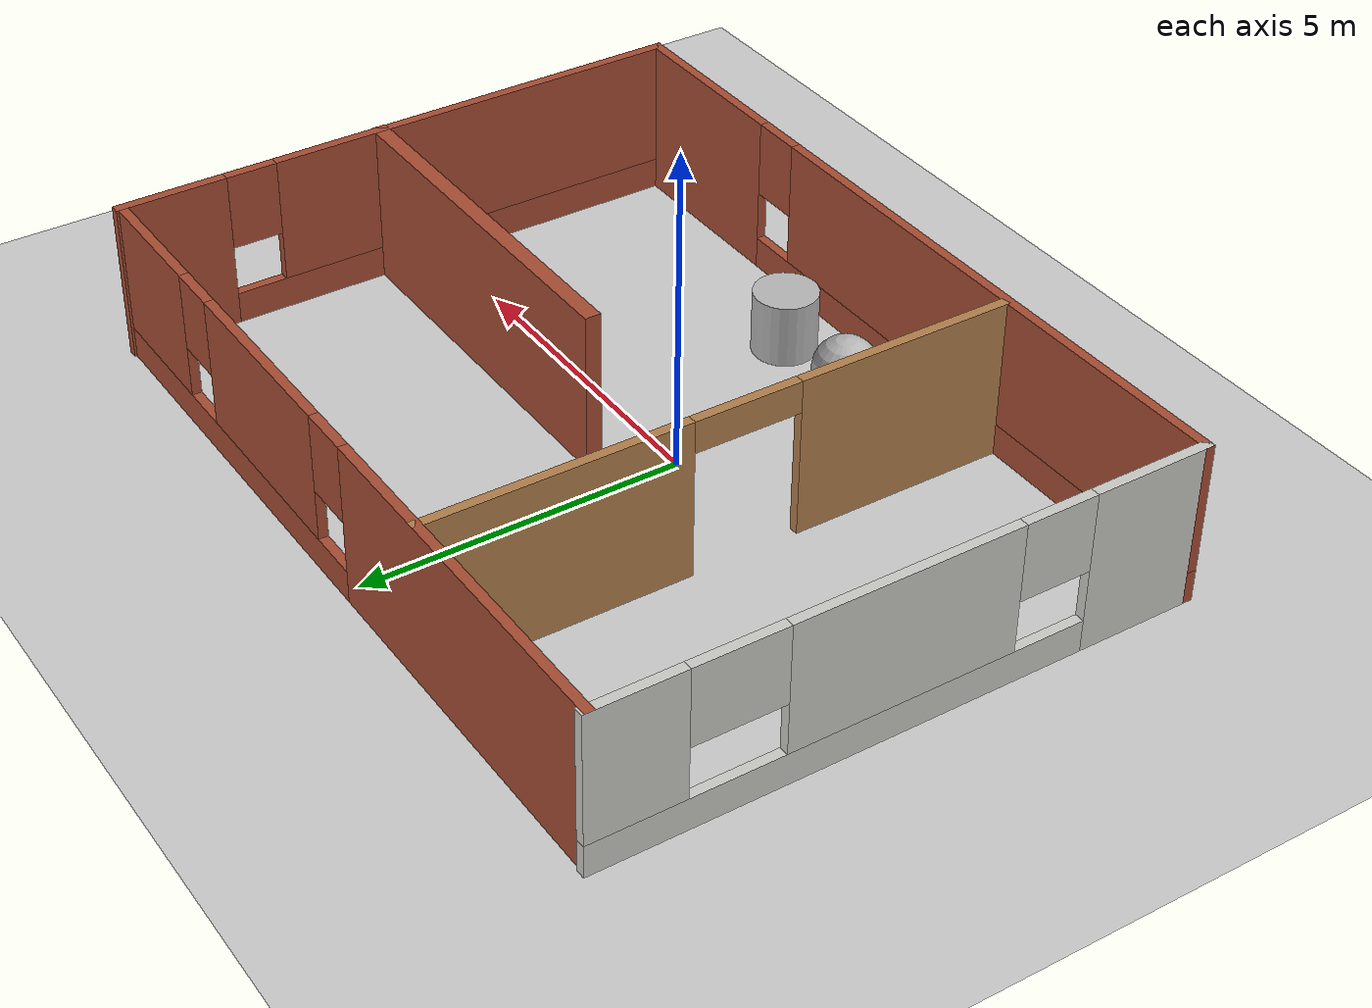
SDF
<sdf version="1.6">
 <world name="default">
  <light name="sun" type="directional">
   <pose>0 0 10 0 -0 0</pose>
   <diffuse>0.8 0.8 0.8 1</diffuse>
   <specular>0.1 0.1 0.1 1</specular>
   <attenuation>
    <range>1000</range>
    <constant>0.9</constant>
    <linear>0.01</linear>
    <quadratic>0.001</quadratic>
   </attenuation>
   <direction>-0.5 0.5 -1</direction>
  </light>
  <model name="ground_plane">
   <static>1</static>
   <link name="link">
    <collision name="collision">
     <geometry><plane><normal>0 0 1</normal><size>100 100</size></plane></geometry>
     <surface><friction><ode><mu>100</mu><mu2>50</mu2></ode></friction></surface>
    </collision>
    <visual name="visual">
     <cast_shadows>0</cast_shadows>
     <geometry><plane><normal>0 0 1</normal><size>100 100</size></plane></geometry>
     <material>
      <script><uri>file://media/materials/scripts/gazebo.material</uri><name>Gazebo/Grey</name></script>
     </material>
    </visual>
   </link>
  </model>
  <gravity>0 0 -9.8</gravity>
  <magnetic_field>6e-06 2.3e-05 -4.2e-05</magnetic_field>
  <atmosphere type="adiabatic"/>
  <physics name="default_physics" default="0" type="ode">
   <max_step_size>0.001</max_step_size>
   <real_time_factor>1</real_time_factor>
   <real_time_update_rate>1000</real_time_update_rate>
  </physics>
  <scene><ambient>0.4 0.4 0.4 1</ambient><background>0.7 0.7 0.7 1</background><shadows>1</shadows></scene>
  <spherical_coordinates>
   <surface_model>EARTH_WGS84</surface_model>
   <latitude_deg>0</latitude_deg>
   <longitude_deg>0</longitude_deg>
   <elevation>0</elevation>
   <heading_deg>0</heading_deg>
  </spherical_coordinates>
  <model name="small_test_building">
   <pose>0.317568 0.621309 0 0 -0 0</pose>
   <link name="Wall_1">
    <pose>-0.004477 4.55 0 0 -0 0</pose>
    <visual name="Wall_1_Visual_0">
     <pose>-3.44177 0 1.25 0 -0 0</pose>
     <geometry><box><size>5.86646 0.15 2.5</size></box></geometry>
     <material>
      <script><uri>file://media/materials/scripts/gazebo.material</uri><name>Gazebo/Bricks</name></script>
      <ambient>0.435294 0.796078 0.67451 1</ambient>
     </material>
    </visual>
    <collision name="Wall_1_Collision_0">
     <geometry><box><size>5.86646 0.15 2.5</size></box></geometry>
     <pose>-3.44177 0 1.25 0 -0 0</pose>
    </collision>
    <visual name="Wall_1_Visual_1">
     <pose>2.93323 0 0.25 0 -0 0</pose>
     <geometry><box><size>6.88354 0.15 0.5</size></box></geometry>
     <material>
      <script><uri>file://media/materials/scripts/gazebo.material</uri><name>Gazebo/Bricks</name></script>
      <ambient>0.435294 0.796078 0.67451 1</ambient>
     </material>
    </visual>
    <collision name="Wall_1_Collision_1">
     <geometry><box><size>6.88354 0.15 0.5</size></box></geometry>
     <pose>2.93323 0 0.25 0 -0 0</pose>
    </collision>
    <visual name="Wall_1_Visual_2">
     <pose>1.84388 0 1.5 0 -0 0</pose>
     <geometry><box><size>3.10484 0.15 2</size></box></geometry>
     <material>
      <script><uri>file://media/materials/scripts/gazebo.material</uri><name>Gazebo/Bricks</name></script>
      <ambient>0.435294 0.796078 0.67451 1</ambient>
     </material>
    </visual>
    <collision name="Wall_1_Collision_2">
     <geometry><box><size>3.10484 0.15 2</size></box></geometry>
     <pose>1.84388 0 1.5 0 -0 0</pose>
    </collision>
    <visual name="Wall_1_Visual_3">
     <pose>5.28565 0 1.5 0 -0 0</pose>
     <geometry><box><size>2.17869 0.15 2</size></box></geometry>
     <material>
      <script><uri>file://media/materials/scripts/gazebo.material</uri><name>Gazebo/Bricks</name></script>
      <ambient>0.435294 0.796078 0.67451 1</ambient>
     </material>
    </visual>
    <collision name="Wall_1_Collision_3">
     <geometry><box><size>2.17869 0.15 2</size></box></geometry>
     <pose>5.28565 0 1.5 0 -0 0</pose>
    </collision>
    <visual name="Wall_1_Visual_4">
     <pose>-0.108538 0 1.9 0 -0 0</pose>
     <geometry><box><size>0.8 0.15 1.2</size></box></geometry>
     <material>
      <script><uri>file://media/materials/scripts/gazebo.material</uri><name>Gazebo/Bricks</name></script>
      <ambient>0.435294 0.796078 0.67451 1</ambient>
     </material>
    </visual>
    <collision name="Wall_1_Collision_4">
     <geometry><box><size>0.8 0.15 1.2</size></box></geometry>
     <pose>-0.108538 0 1.9 0 -0 0</pose>
    </collision>
    <visual name="Wall_1_Visual_5">
     <pose>3.7963 0 1.9 0 -0 0</pose>
     <geometry><box><size>0.8 0.15 1.2</size></box></geometry>
     <material>
      <script><uri>file://media/materials/scripts/gazebo.material</uri><name>Gazebo/Bricks</name></script>
      <ambient>0.435294 0.796078 0.67451 1</ambient>
     </material>
    </visual>
    <collision name="Wall_1_Collision_5">
     <geometry><box><size>0.8 0.15 1.2</size></box></geometry>
     <pose>3.7963 0 1.9 0 -0 0</pose>
    </collision>
   </link>
   <link name="Wall_2">
    <pose>6.29552 0 0 0 0 -1.5708</pose>
    <visual name="Wall_2_Visual_0">
     <pose>-3.79461 0 1.25 0 -0 0</pose>
     <geometry><box><size>1.73114 0.15 2.5</size></box></geometry>
     <material>
      <script><uri>file://media/materials/scripts/gazebo.material</uri><name>Gazebo/Bricks</name></script>
      <ambient>1 1 1 1</ambient>
     </material>
    </visual>
    <collision name="Wall_2_Collision_0">
     <geometry><box><size>1.73114 0.15 2.5</size></box></geometry>
     <pose>-3.79461 0 1.25 0 -0 0</pose>
    </collision>
    <visual name="Wall_2_Visual_1">
     <pose>0.865572 0 0.25 0 -0 0</pose>
     <geometry><box><size>7.58921 0.15 0.5</size></box></geometry>
     <material>
      <script><uri>file://media/materials/scripts/gazebo.material</uri><name>Gazebo/Bricks</name></script>
      <ambient>1 1 1 1</ambient>
     </material>
    </visual>
    <collision name="Wall_2_Collision_1">
     <geometry><box><size>7.58921 0.15 0.5</size></box></geometry>
     <pose>0.865572 0 0.25 0 -0 0</pose>
    </collision>
    <visual name="Wall_2_Visual_2">
     <pose>1.26557 0 1.5 0 -0 0</pose>
     <geometry><box><size>6.78921 0.15 2</size></box></geometry>
     <material>
      <script><uri>file://media/materials/scripts/gazebo.material</uri><name>Gazebo/Bricks</name></script>
      <ambient>1 1 1 1</ambient>
     </material>
    </visual>
    <collision name="Wall_2_Collision_2">
     <geometry><box><size>6.78921 0.15 2</size></box></geometry>
     <pose>1.26557 0 1.5 0 -0 0</pose>
    </collision>
    <visual name="Wall_2_Visual_3">
     <pose>-2.52903 0 1.9 0 -0 0</pose>
     <geometry><box><size>0.8 0.15 1.2</size></box></geometry>
     <material>
      <script><uri>file://media/materials/scripts/gazebo.material</uri><name>Gazebo/Bricks</name></script>
      <ambient>1 1 1 1</ambient>
     </material>
    </visual>
    <collision name="Wall_2_Collision_3">
     <geometry><box><size>0.8 0.15 1.2</size></box></geometry>
     <pose>-2.52903 0 1.9 0 -0 0</pose>
    </collision>
   </link>
   <link name="Wall_3">
    <pose>-0.004477 -4.58518 0 0 -0 3.14159</pose>
    <visual name="Wall_3_Visual_0">
     <pose>-4.86351 0 1.25 0 -0 0</pose>
     <geometry><box><size>3.02298 0.15 2.5</size></box></geometry>
     <material>
      <script><uri>file://media/materials/scripts/gazebo.material</uri><name>Gazebo/Bricks</name></script>
      <ambient>0.760784 0.662745 0.627451 1</ambient>
     </material>
    </visual>
    <collision name="Wall_3_Collision_0">
     <geometry><box><size>3.02298 0.15 2.5</size></box></geometry>
     <pose>-4.86351 0 1.25 0 -0 0</pose>
    </collision>
    <visual name="Wall_3_Visual_1">
     <pose>1.51149 0 0.25 0 -0 0</pose>
     <geometry><box><size>9.72701 0.15 0.5</size></box></geometry>
     <material>
      <script><uri>file://media/materials/scripts/gazebo.material</uri><name>Gazebo/Bricks</name></script>
      <ambient>0.760784 0.662745 0.627451 1</ambient>
     </material>
    </visual>
    <collision name="Wall_3_Collision_1">
     <geometry><box><size>9.72701 0.15 0.5</size></box></geometry>
     <pose>1.51149 0 0.25 0 -0 0</pose>
    </collision>
    <visual name="Wall_3_Visual_2">
     <pose>1.91149 0 1.5 0 -0 0</pose>
     <geometry><box><size>8.92702 0.15 2</size></box></geometry>
     <material>
      <script><uri>file://media/materials/scripts/gazebo.material</uri><name>Gazebo/Bricks</name></script>
      <ambient>0.760784 0.662745 0.627451 1</ambient>
     </material>
    </visual>
    <collision name="Wall_3_Collision_2">
     <geometry><box><size>8.92702 0.15 2</size></box></geometry>
     <pose>1.91149 0 1.5 0 -0 0</pose>
    </collision>
    <visual name="Wall_3_Visual_3">
     <pose>-2.95201 0 1.9 0 -0 0</pose>
     <geometry><box><size>0.8 0.15 1.2</size></box></geometry>
     <material>
      <script><uri>file://media/materials/scripts/gazebo.material</uri><name>Gazebo/Bricks</name></script>
      <ambient>0.760784 0.662745 0.627451 1</ambient>
     </material>
    </visual>
    <collision name="Wall_3_Collision_3">
     <geometry><box><size>0.8 0.15 1.2</size></box></geometry>
     <pose>-2.95201 0 1.9 0 -0 0</pose>
    </collision>
   </link>
   <link name="Wall_4">
    <pose>-6.30448 0 0 0 -0 1.5708</pose>
    <visual name="Wall_4_Visual_0">
     <pose>-3.71106 0 1.25 0 -0 0</pose>
     <geometry><box><size>1.89823 0.15 2.5</size></box></geometry>
     <material>
      <script><uri>file://media/materials/scripts/gazebo.material</uri><name>Gazebo/CeilingTiled</name></script>
      <ambient>1 1 1 1</ambient>
     </material>
    </visual>
    <collision name="Wall_4_Collision_0">
     <geometry><box><size>1.89823 0.15 2.5</size></box></geometry>
     <pose>-3.71106 0 1.25 0 -0 0</pose>
    </collision>
    <visual name="Wall_4_Visual_1">
     <pose>0.949117 0 0.25 0 -0 0</pose>
     <geometry><box><size>7.42212 0.15 0.5</size></box></geometry>
     <material>
      <script><uri>file://media/materials/scripts/gazebo.material</uri><name>Gazebo/CeilingTiled</name></script>
      <ambient>1 1 1 1</ambient>
     </material>
    </visual>
    <collision name="Wall_4_Collision_1">
     <geometry><box><size>7.42212 0.15 0.5</size></box></geometry>
     <pose>0.949117 0 0.25 0 -0 0</pose>
    </collision>
    <visual name="Wall_4_Visual_2">
     <pose>0.083477 0 1.5 0 -0 0</pose>
     <geometry><box><size>3.45763 0.15 2</size></box></geometry>
     <material>
      <script><uri>file://media/materials/scripts/gazebo.material</uri><name>Gazebo/CeilingTiled</name></script>
      <ambient>1 1 1 1</ambient>
     </material>
    </visual>
    <collision name="Wall_4_Collision_2">
     <geometry><box><size>3.45763 0.15 2</size></box></geometry>
     <pose>0.083477 0 1.5 0 -0 0</pose>
    </collision>
    <visual name="Wall_4_Visual_3">
     <pose>3.93525 0 1.5 0 -0 0</pose>
     <geometry><box><size>1.44985 0.15 2</size></box></geometry>
     <material>
      <script><uri>file://media/materials/scripts/gazebo.material</uri><name>Gazebo/CeilingTiled</name></script>
      <ambient>1 1 1 1</ambient>
     </material>
    </visual>
    <collision name="Wall_4_Collision_3">
     <geometry><box><size>1.44985 0.15 2</size></box></geometry>
     <pose>3.93525 0 1.5 0 -0 0</pose>
    </collision>
    <visual name="Wall_4_Visual_4">
     <pose>-2.20364 0 1.9 0 -0 0</pose>
     <geometry><box><size>1.11661 0.15 1.2</size></box></geometry>
     <material>
      <script><uri>file://media/materials/scripts/gazebo.material</uri><name>Gazebo/CeilingTiled</name></script>
      <ambient>1 1 1 1</ambient>
     </material>
    </visual>
    <collision name="Wall_4_Collision_4">
     <geometry><box><size>1.11661 0.15 1.2</size></box></geometry>
     <pose>-2.20364 0 1.9 0 -0 0</pose>
    </collision>
    <visual name="Wall_4_Visual_5">
     <pose>2.51131 0 1.9 0 -0 0</pose>
     <geometry><box><size>1.39804 0.15 1.2</size></box></geometry>
     <material>
      <script><uri>file://media/materials/scripts/gazebo.material</uri><name>Gazebo/CeilingTiled</name></script>
      <ambient>1 1 1 1</ambient>
     </material>
    </visual>
    <collision name="Wall_4_Collision_5">
     <geometry><box><size>1.39804 0.15 1.2</size></box></geometry>
     <pose>2.51131 0 1.9 0 -0 0</pose>
    </collision>
   </link>
   <link name="Wall_6">
    <collision name="Wall_6_Collision">
     <geometry><box><size>6.10009 0.25 2.5</size></box></geometry>
     <pose>0 0 1.25 0 -0 0</pose>
    </collision>
    <visual name="Wall_6_Visual">
     <pose>0 0 1.25 0 -0 0</pose>
     <geometry><box><size>6.10009 0.25 2.5</size></box></geometry>
     <material>
      <script><uri>file://media/materials/scripts/gazebo.material</uri><name>Gazebo/Bricks</name></script>
      <ambient>1 1 1 1</ambient>
     </material>
    </visual>
    <pose>3.32943 0.363691 0 0 -0 3.14159</pose>
   </link>
   <link name="Wall_8">
    <pose>-2.39963 0 0 0 0 -1.5708</pose>
    <visual name="Wall_8_Visual_0">
     <pose>-2.58744 0 1.25 0 -0 0</pose>
     <geometry><box><size>4.07511 0.15 2.5</size></box></geometry>
     <material>
      <script><uri>file://media/materials/scripts/gazebo.material</uri><name>Gazebo/Wood</name></script>
      <ambient>1 1 1 1</ambient>
     </material>
    </visual>
    <collision name="Wall_8_Collision_0">
     <geometry><box><size>4.07511 0.15 2.5</size></box></geometry>
     <pose>-2.58744 0 1.25 0 -0 0</pose>
    </collision>
    <visual name="Wall_8_Visual_1">
     <pose>2.87452 0 1.25 0 -0 0</pose>
     <geometry><box><size>3.50095 0.15 2.5</size></box></geometry>
     <material>
      <script><uri>file://media/materials/scripts/gazebo.material</uri><name>Gazebo/Wood</name></script>
      <ambient>1 1 1 1</ambient>
     </material>
    </visual>
    <collision name="Wall_8_Collision_1">
     <geometry><box><size>3.50095 0.15 2.5</size></box></geometry>
     <pose>2.87452 0 1.25 0 -0 0</pose>
    </collision>
    <visual name="Wall_8_Visual_2">
     <pose>0.28708 0 2.25 0 -0 0</pose>
     <geometry><box><size>1.67393 0.15 0.5</size></box></geometry>
     <material>
      <script><uri>file://media/materials/scripts/gazebo.material</uri><name>Gazebo/Wood</name></script>
      <ambient>1 1 1 1</ambient>
     </material>
    </visual>
    <collision name="Wall_8_Collision_2">
     <geometry><box><size>1.67393 0.15 0.5</size></box></geometry>
     <pose>0.28708 0 2.25 0 -0 0</pose>
    </collision>
   </link>
   <static>1</static>
  </model>
  <model name="textured_shapes">
   <pose>0.083703 -2.94759 0.5 0 0 -1.56926</pose>
   <link name="box">
    <pose>0 -1.5 0 0 -0 0</pose>
    <collision name="collision"><geometry><box><size>1 1 1</size></box></geometry></collision>
    <visual name="visual">
     <geometry><box><size>1 1 1</size></box></geometry>
     <material>
      <script>
       <uri>model://textured_shapes/materials/scripts</uri>
       <uri>model://textured_shapes/materials/textures</uri>
       <name>TexturedShape/Squares</name>
      </script>
     </material>
    </visual>
    <inertial>
     <inertia><ixx>1</ixx><ixy>0</ixy><ixz>0</ixz><iyy>1</iyy><iyz>0</iyz><izz>1</izz></inertia>
     <mass>1</mass>
    </inertial>
   </link>
   <link name="sphere">
    <collision name="collision"><geometry><sphere><radius>0.5</radius></sphere></geometry></collision>
    <visual name="visual">
     <geometry><sphere><radius>0.5</radius></sphere></geometry>
     <material>
      <script>
       <uri>model://textured_shapes/materials/scripts</uri>
       <uri>model://textured_shapes/materials/textures</uri>
       <name>TexturedShape/Squares</name>
      </script>
     </material>
    </visual>
    <inertial>
     <inertia><ixx>1</ixx><ixy>0</ixy><ixz>0</ixz><iyy>1</iyy><iyz>0</iyz><izz>1</izz></inertia>
     <mass>1</mass>
    </inertial>
   </link>
   <link name="cylinder">
    <pose>0 1.5 0 0 -0 0</pose>
    <collision name="collision">
     <geometry><cylinder><radius>0.5</radius><length>1</length></cylinder></geometry>
    </collision>
    <visual name="visual">
     <geometry><cylinder><radius>0.5</radius><length>1</length></cylinder></geometry>
     <material>
      <script>
       <uri>model://textured_shapes/materials/scripts</uri>
       <uri>model://textured_shapes/materials/textures</uri>
       <name>TexturedShape/Squares</name>
      </script>
     </material>
    </visual>
    <inertial>
     <inertia><ixx>1</ixx><ixy>0</ixy><ixz>0</ixz><iyy>1</iyy><iyz>0</iyz><izz>1</izz></inertia>
     <mass>1</mass>
    </inertial>
   </link>
  </model>
 </world>
</sdf>
